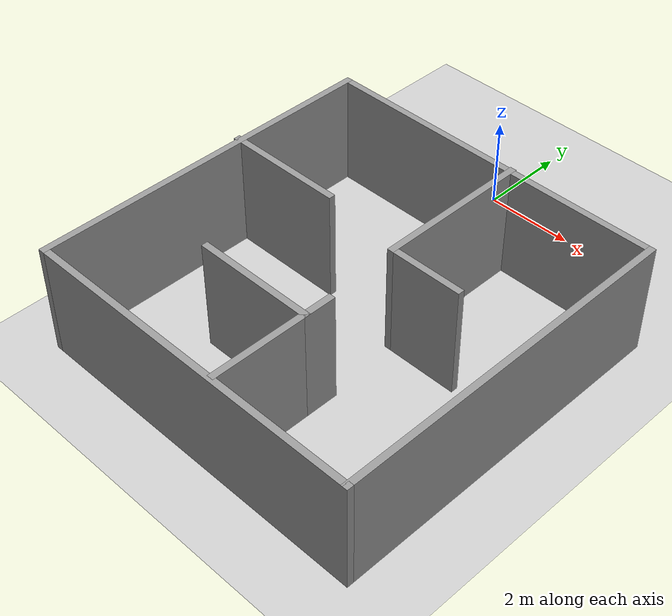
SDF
<sdf version="1.7">
 <world name="default">
  <light name="sun" type="directional">
   <pose>0 0 10 0 -0 0</pose>
   <diffuse>0.8 0.8 0.8 1</diffuse>
   <specular>0.2 0.2 0.2 1</specular>
   <attenuation>
    <range>1000</range>
    <constant>0.9</constant>
    <linear>0.01</linear>
    <quadratic>0.001</quadratic>
   </attenuation>
   <direction>-0.5 0.1 -0.9</direction>
   <spot><inner_angle>0</inner_angle><outer_angle>0</outer_angle><falloff>0</falloff></spot>
  </light>
  <model name="ground_plane">
   <static>1</static>
   <link name="link">
    <collision name="collision">
     <geometry><plane><normal>0 0 1</normal><size>100 100</size></plane></geometry>
     <surface>
      <contact><collide_bitmask>65535</collide_bitmask></contact>
      <friction><ode><mu>100</mu><mu2>50</mu2></ode></friction>
     </surface>
    </collision>
    <visual name="visual">
     <cast_shadows>0</cast_shadows>
     <geometry><plane><normal>0 0 1</normal><size>100 100</size></plane></geometry>
     <material>
      <script><uri>file://media/materials/scripts/gazebo.material</uri><name>Gazebo/Grey</name></script>
     </material>
    </visual>
   </link>
  </model>
  <gravity>0 0 -9.8</gravity>
  <magnetic_field>6e-06 2.3e-05 -4.2e-05</magnetic_field>
  <atmosphere type="adiabatic"/>
  <physics type="ode">
   <max_step_size>0.001</max_step_size>
   <real_time_factor>1</real_time_factor>
   <real_time_update_rate>1000</real_time_update_rate>
  </physics>
  <scene><ambient>0.4 0.4 0.4 1</ambient><background>0.7 0.7 0.7 1</background><shadows>1</shadows></scene>
  <audio><device>default</device></audio>
  <spherical_coordinates>
   <surface_model>EARTH_WGS84</surface_model>
   <latitude_deg>0</latitude_deg>
   <longitude_deg>0</longitude_deg>
   <elevation>0</elevation>
   <heading_deg>0</heading_deg>
  </spherical_coordinates>
  <model name="2">
   <pose>0.95575 -4.76468 0 0 -0 0</pose>
   <link name="Wall_10">
    <collision name="Wall_10_Collision">
     <geometry><box><size>2.25 0.15 2.5</size></box></geometry>
     <pose>0 0 1.25 0 -0 0</pose>
    </collision>
    <visual name="Wall_10_Visual">
     <pose>0 0 1.25 0 -0 0</pose>
     <geometry><box><size>2.25 0.15 2.5</size></box></geometry>
     <material>
      <script><uri>file://media/materials/scripts/gazebo.material</uri><name>Gazebo/Grey</name></script>
      <ambient>1 1 1 1</ambient>
     </material>
     <meta><layer>0</layer></meta>
    </visual>
    <pose>0.722805 -3.55914 0 0 -0 1.5708</pose>
   </link>
   <link name="Wall_11">
    <collision name="Wall_11_Collision">
     <geometry><box><size>2.75 0.15 2.5</size></box></geometry>
     <pose>0 0 1.25 0 -0 0</pose>
    </collision>
    <visual name="Wall_11_Visual">
     <pose>0 0 1.25 0 -0 0</pose>
     <geometry><box><size>2.75 0.15 2.5</size></box></geometry>
     <material>
      <script><uri>file://media/materials/scripts/gazebo.material</uri><name>Gazebo/Grey</name></script>
      <ambient>1 1 1 1</ambient>
     </material>
     <meta><layer>0</layer></meta>
    </visual>
    <pose>-0.577195 -2.50914 0 0 -0 3.14159</pose>
   </link>
   <link name="Wall_14">
    <collision name="Wall_14_Collision">
     <geometry><box><size>2.75 0.15 2.5</size></box></geometry>
     <pose>0 0 1.25 0 -0 0</pose>
    </collision>
    <visual name="Wall_14_Visual">
     <pose>0 0 1.25 0 -0 0</pose>
     <geometry><box><size>2.75 0.15 2.5</size></box></geometry>
     <material>
      <script><uri>file://media/materials/scripts/gazebo.material</uri><name>Gazebo/Grey</name></script>
      <ambient>1 1 1 1</ambient>
     </material>
     <meta><layer>0</layer></meta>
    </visual>
    <pose>-2.65301 0.125257 0 0 -0 0</pose>
   </link>
   <link name="Wall_16">
    <collision name="Wall_16_Collision">
     <geometry><box><size>0.75 0.15 2.5</size></box></geometry>
     <pose>0 0 1.25 0 -0 0</pose>
    </collision>
    <visual name="Wall_16_Visual">
     <pose>0 0 1.25 0 -0 0</pose>
     <geometry><box><size>0.75 0.15 2.5</size></box></geometry>
     <material>
      <script><uri>file://media/materials/scripts/gazebo.material</uri><name>Gazebo/Grey</name></script>
      <ambient>1 1 1 1</ambient>
     </material>
     <meta><layer>0</layer></meta>
    </visual>
    <pose>0.722805 -2.20914 0 0 -0 1.5708</pose>
   </link>
   <link name="Wall_2">
    <collision name="Wall_2_Collision">
     <geometry><box><size>8 0.15 2.5</size></box></geometry>
     <pose>0 0 1.25 0 -0 0</pose>
    </collision>
    <visual name="Wall_2_Visual">
     <pose>0 0 1.25 0 -0 0</pose>
     <geometry><box><size>8 0.15 2.5</size></box></geometry>
     <material>
      <script><uri>file://media/materials/scripts/gazebo.material</uri><name>Gazebo/Grey</name></script>
      <ambient>1 1 1 1</ambient>
     </material>
     <meta><layer>0</layer></meta>
    </visual>
    <pose>0.028007 3.16032 0 0 -0 0</pose>
   </link>
   <link name="Wall_3">
    <collision name="Wall_3_Collision">
     <geometry><box><size>8 0.15 2.5</size></box></geometry>
     <pose>0 0 1.25 0 -0 0</pose>
    </collision>
    <visual name="Wall_3_Visual">
     <pose>0 0 1.25 0 -0 0</pose>
     <geometry><box><size>8 0.15 2.5</size></box></geometry>
     <material>
      <script><uri>file://media/materials/scripts/gazebo.material</uri><name>Gazebo/Grey</name></script>
      <ambient>1 1 1 1</ambient>
     </material>
     <meta><layer>0</layer></meta>
    </visual>
    <pose>3.95301 -0.764676 0 0 -0 -1.5708</pose>
   </link>
   <link name="Wall_4">
    <collision name="Wall_4_Collision">
     <geometry><box><size>8 0.15 2.5</size></box></geometry>
     <pose>0 0 1.25 0 -0 0</pose>
    </collision>
    <visual name="Wall_4_Visual">
     <pose>0 0 1.25 0 -0 0</pose>
     <geometry><box><size>8 0.15 2.5</size></box></geometry>
     <material>
      <script><uri>file://media/materials/scripts/gazebo.material</uri><name>Gazebo/Grey</name></script>
      <ambient>1 1 1 1</ambient>
     </material>
     <meta><layer>0</layer></meta>
    </visual>
    <pose>0.028007 -4.68968 0 0 -0 3.14159</pose>
   </link>
   <link name="Wall_5">
    <collision name="Wall_5_Collision">
     <geometry><box><size>8 0.15 2.5</size></box></geometry>
     <pose>0 0 1.25 0 -0 0</pose>
    </collision>
    <visual name="Wall_5_Visual">
     <pose>0 0 1.25 0 -0 0</pose>
     <geometry><box><size>8 0.15 2.5</size></box></geometry>
     <material>
      <script><uri>file://media/materials/scripts/gazebo.material</uri><name>Gazebo/Grey</name></script>
      <ambient>1 1 1 1</ambient>
     </material>
     <meta><layer>0</layer></meta>
    </visual>
    <pose>-3.89699 -0.764676 0 0 -0 1.5708</pose>
   </link>
   <link name="Wall_7">
    <collision name="Wall_7_Collision">
     <geometry><box><size>3.5 0.15 2.5</size></box></geometry>
     <pose>0 0 1.25 0 -0 0</pose>
    </collision>
    <visual name="Wall_7_Visual">
     <pose>0 0 1.25 0 -0 0</pose>
     <geometry><box><size>3.5 0.15 2.5</size></box></geometry>
     <material>
      <script><uri>file://media/materials/scripts/gazebo.material</uri><name>Gazebo/Grey</name></script>
      <ambient>1 1 1 1</ambient>
     </material>
     <meta><layer>0</layer></meta>
    </visual>
    <pose>0.602531 1.51399 0 0 -0 -1.5708</pose>
   </link>
   <link name="Wall_8">
    <collision name="Wall_8_Collision">
     <geometry><box><size>1.75 0.15 2.5</size></box></geometry>
     <pose>0 0 1.25 0 -0 0</pose>
    </collision>
    <visual name="Wall_8_Visual">
     <pose>0 0 1.25 0 -0 0</pose>
     <geometry><box><size>1.75 0.15 2.5</size></box></geometry>
     <material>
      <script><uri>file://media/materials/scripts/gazebo.material</uri><name>Gazebo/Grey</name></script>
      <ambient>1 1 1 1</ambient>
     </material>
     <meta><layer>0</layer></meta>
    </visual>
    <pose>1.40253 -0.161006 0 0 -0 0</pose>
   </link>
   <static>1</static>
  </model>
 </world>
</sdf>
